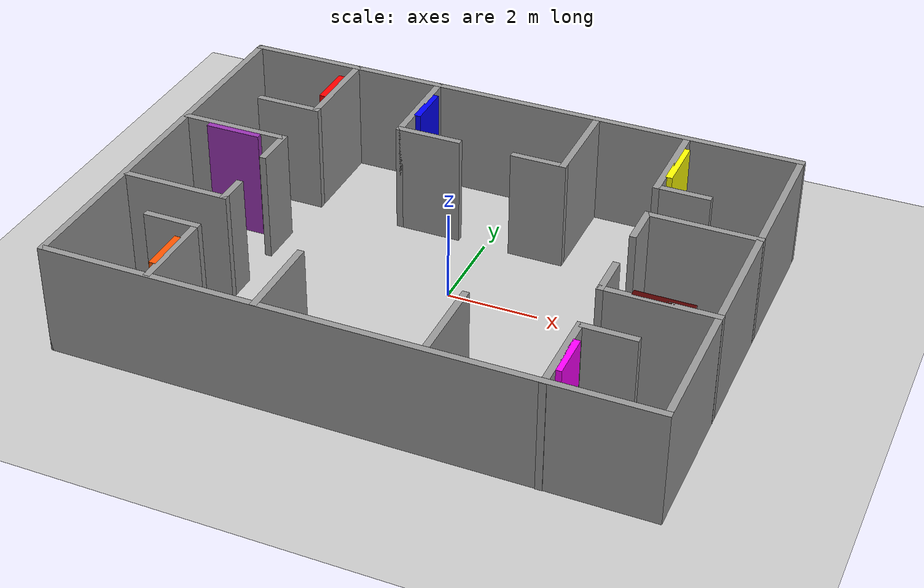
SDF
<sdf version="1.6">
 <world name="default">
  <light name="sun" type="directional">
   <pose>0 0 10 0 -0 0</pose>
   <diffuse>0.8 0.8 0.8 1</diffuse>
   <specular>0.2 0.2 0.2 1</specular>
   <attenuation>
    <range>1000</range>
    <constant>0.9</constant>
    <linear>0.01</linear>
    <quadratic>0.001</quadratic>
   </attenuation>
   <direction>-0.5 0.1 -0.9</direction>
  </light>
  <model name="ground_plane">
   <static>1</static>
   <link name="link">
    <collision name="collision">
     <geometry><plane><normal>0 0 1</normal><size>100 100</size></plane></geometry>
     <surface><friction><ode><mu>100</mu><mu2>50</mu2></ode></friction></surface>
    </collision>
    <visual name="visual">
     <cast_shadows>0</cast_shadows>
     <geometry><plane><normal>0 0 1</normal><size>100 100</size></plane></geometry>
     <material>
      <script><uri>file://media/materials/scripts/gazebo.material</uri><name>Gazebo/Grey</name></script>
     </material>
    </visual>
   </link>
  </model>
  <gravity>0 0 -9.8</gravity>
  <magnetic_field>6e-06 2.3e-05 -4.2e-05</magnetic_field>
  <atmosphere type="adiabatic"/>
  <physics name="default_physics" default="0" type="ode">
   <max_step_size>0.001</max_step_size>
   <real_time_factor>1</real_time_factor>
   <real_time_update_rate>1000</real_time_update_rate>
  </physics>
  <scene><ambient>0.4 0.4 0.4 1</ambient><background>0.7 0.7 0.7 1</background><shadows>1</shadows></scene>
  <spherical_coordinates>
   <surface_model>EARTH_WGS84</surface_model>
   <latitude_deg>0</latitude_deg>
   <longitude_deg>0</longitude_deg>
   <elevation>0</elevation>
   <heading_deg>0</heading_deg>
  </spherical_coordinates>
  <model name="world2">
   <pose>-0.14773 -0.383057 0 0 -0 0</pose>
   <link name="Wall_100">
    <collision name="Wall_100_Collision">
     <geometry><box><size>1.25 0.15 2.5</size></box></geometry>
     <pose>0 0 1.25 0 -0 0</pose>
    </collision>
    <visual name="Wall_100_Visual">
     <pose>0 0 1.25 0 -0 0</pose>
     <geometry><box><size>1.25 0.15 2.5</size></box></geometry>
     <material>
      <script><uri>file://media/materials/scripts/gazebo.material</uri><name>Gazebo/Grey</name></script>
      <ambient>1 1 1 1</ambient>
     </material>
     <meta><layer>0</layer></meta>
    </visual>
    <pose>1.33062 2.43561 0 0 -0 3.14159</pose>
   </link>
   <link name="Wall_104">
    <collision name="Wall_104_Collision">
     <geometry><box><size>1.25 0.15 2.5</size></box></geometry>
     <pose>0 0 1.25 0 -0 0</pose>
    </collision>
    <visual name="Wall_104_Visual">
     <pose>0 0 1.25 0 -0 0</pose>
     <geometry><box><size>1.25 0.15 2.5</size></box></geometry>
     <material>
      <script><uri>file://media/materials/scripts/gazebo.material</uri><name>Gazebo/Purple</name></script>
      <ambient>0 0 0 1</ambient>
     </material>
     <meta><layer>0</layer></meta>
    </visual>
    <pose>-5.17231 0.955395 0 0 -0 0</pose>
   </link>
   <link name="Wall_107">
    <collision name="Wall_107_Collision">
     <geometry><box><size>1 0.15 2.5</size></box></geometry>
     <pose>0 0 1.25 0 -0 0</pose>
    </collision>
    <visual name="Wall_107_Visual">
     <pose>0 0 1.25 0 -0 0</pose>
     <geometry><box><size>1 0.15 2.5</size></box></geometry>
     <material>
      <script><uri>file://media/materials/scripts/gazebo.material</uri><name>Gazebo/Grey</name></script>
      <ambient>1 0 0 1</ambient>
     </material>
     <meta><layer>0</layer></meta>
    </visual>
    <pose>-4.073 3.54743 0 0 0 -1.5708</pose>
   </link>
   <link name="Wall_109">
    <collision name="Wall_109_Collision">
     <geometry><box><size>1.25 0.15 2.5</size></box></geometry>
     <pose>0 0 1.25 0 -0 0</pose>
    </collision>
    <visual name="Wall_109_Visual">
     <pose>0 0 1.25 0 -0 0</pose>
     <geometry><box><size>1.25 0.15 2.5</size></box></geometry>
     <material>
      <script><uri>file://media/materials/scripts/gazebo.material</uri><name>Gazebo/Grey</name></script>
      <ambient>1 1 0 1</ambient>
     </material>
     <meta><layer>0</layer></meta>
    </visual>
    <pose>4.05288 3.48277 0 0 0 -1.5708</pose>
   </link>
   <link name="Wall_111">
    <collision name="Wall_111_Collision">
     <geometry><box><size>1 0.15 2.5</size></box></geometry>
     <pose>0 0 1.25 0 -0 0</pose>
    </collision>
    <visual name="Wall_111_Visual">
     <pose>0 0 1.25 0 -0 0</pose>
     <geometry><box><size>1 0.15 2.5</size></box></geometry>
     <material>
      <script><uri>file://media/materials/scripts/gazebo.material</uri><name>Gazebo/Grey</name></script>
      <ambient>1 0.333333 0 1</ambient>
     </material>
     <meta><layer>0</layer></meta>
    </visual>
    <pose>-4.17357 -3.65323 0 0 0 -1.5708</pose>
   </link>
   <link name="Wall_113">
    <collision name="Wall_113_Collision">
     <geometry><box><size>1.25 0.15 2.5</size></box></geometry>
     <pose>0 0 1.25 0 -0 0</pose>
    </collision>
    <visual name="Wall_113_Visual">
     <pose>0 0 1.25 0 -0 0</pose>
     <geometry><box><size>1.25 0.15 2.5</size></box></geometry>
     <material>
      <script><uri>file://media/materials/scripts/gazebo.material</uri><name>Gazebo/Grey</name></script>
      <ambient>0.333333 0 0 1</ambient>
     </material>
     <meta><layer>0</layer></meta>
    </visual>
    <pose>5.30686 -1.33755 0 0 -0 0</pose>
   </link>
   <link name="Wall_117">
    <collision name="Wall_117_Collision">
     <geometry><box><size>1 0.15 2.5</size></box></geometry>
     <pose>0 0 1.25 0 -0 0</pose>
    </collision>
    <visual name="Wall_117_Visual">
     <pose>0 0 1.25 0 -0 0</pose>
     <geometry><box><size>1 0.15 2.5</size></box></geometry>
     <material>
      <script><uri>file://media/materials/scripts/gazebo.material</uri><name>Gazebo/Grey</name></script>
      <ambient>1 0 1 1</ambient>
     </material>
     <meta><layer>0</layer></meta>
    </visual>
    <pose>4.23391 -3.67334 0 0 0 -1.5708</pose>
   </link>
   <link name="Wall_122">
    <collision name="Wall_122_Collision">
     <geometry><box><size>1 0.15 2.5</size></box></geometry>
     <pose>0 0 1.25 0 -0 0</pose>
    </collision>
    <visual name="Wall_122_Visual">
     <pose>0 0 1.25 0 -0 0</pose>
     <geometry><box><size>1 0.15 2.5</size></box></geometry>
     <material>
      <script><uri>file://media/materials/scripts/gazebo.material</uri><name>Gazebo/Grey</name></script>
      <ambient>0 0 1 1</ambient>
     </material>
     <meta><layer>0</layer></meta>
    </visual>
    <pose>-1.78005 3.58766 0 0 0 -1.5708</pose>
   </link>
   <link name="Wall_42">
    <collision name="Wall_42_Collision">
     <geometry><box><size>9.25 0.15 2.5</size></box></geometry>
     <pose>0 0 1.25 0 -0 0</pose>
    </collision>
    <visual name="Wall_42_Visual">
     <pose>0 0 1.25 0 -0 0</pose>
     <geometry><box><size>9.25 0.15 2.5</size></box></geometry>
     <material>
      <script><uri>file://media/materials/scripts/gazebo.material</uri><name>Gazebo/Grey</name></script>
      <ambient>1 1 1 1</ambient>
     </material>
     <meta><layer>0</layer></meta>
    </visual>
    <pose>-6.42629 0.005724 0 0 0 -1.5708</pose>
   </link>
   <link name="Wall_43">
    <collision name="Wall_43_Collision">
     <geometry><box><size>13 0.15 2.5</size></box></geometry>
     <pose>0 0 1.25 0 -0 0</pose>
    </collision>
    <visual name="Wall_43_Visual">
     <pose>0 0 1.25 0 -0 0</pose>
     <geometry><box><size>13 0.15 2.5</size></box></geometry>
     <material>
      <script><uri>file://media/materials/scripts/gazebo.material</uri><name>Gazebo/Grey</name></script>
      <ambient>1 1 1 1</ambient>
     </material>
     <meta><layer>0</layer></meta>
    </visual>
    <pose>-0.001286 -4.54428 0 0 -0 0</pose>
   </link>
   <link name="Wall_44">
    <collision name="Wall_44_Collision">
     <geometry><box><size>9.25 0.15 2.5</size></box></geometry>
     <pose>0 0 1.25 0 -0 0</pose>
    </collision>
    <visual name="Wall_44_Visual">
     <pose>0 0 1.25 0 -0 0</pose>
     <geometry><box><size>9.25 0.15 2.5</size></box></geometry>
     <material>
      <script><uri>file://media/materials/scripts/gazebo.material</uri><name>Gazebo/Grey</name></script>
      <ambient>1 1 1 1</ambient>
     </material>
     <meta><layer>0</layer></meta>
    </visual>
    <pose>6.42371 0.005724 0 0 -0 1.5708</pose>
   </link>
   <link name="Wall_45">
    <collision name="Wall_45_Collision">
     <geometry><box><size>13 0.15 2.5</size></box></geometry>
     <pose>0 0 1.25 0 -0 0</pose>
    </collision>
    <visual name="Wall_45_Visual">
     <pose>0 0 1.25 0 -0 0</pose>
     <geometry><box><size>13 0.15 2.5</size></box></geometry>
     <material>
      <script><uri>file://media/materials/scripts/gazebo.material</uri><name>Gazebo/Grey</name></script>
      <ambient>1 1 1 1</ambient>
     </material>
     <meta><layer>0</layer></meta>
    </visual>
    <pose>-0.001286 4.55572 0 0 -0 3.14159</pose>
   </link>
   <link name="Wall_47">
    <collision name="Wall_47_Collision">
     <geometry><box><size>2.25 0.15 2.5</size></box></geometry>
     <pose>0 0 1.25 0 -0 0</pose>
    </collision>
    <visual name="Wall_47_Visual">
     <pose>0 0 1.25 0 -0 0</pose>
     <geometry><box><size>2.25 0.15 2.5</size></box></geometry>
     <material>
      <script><uri>file://media/materials/scripts/gazebo.material</uri><name>Gazebo/Grey</name></script>
      <ambient>1 1 1 1</ambient>
     </material>
     <meta><layer>0</layer></meta>
    </visual>
    <pose>-3.9322 3.50572 0 0 0 -1.5708</pose>
   </link>
   <link name="Wall_48">
    <collision name="Wall_48_Collision">
     <geometry><box><size>1.5 0.15 2.5</size></box></geometry>
     <pose>0 0 1.25 0 -0 0</pose>
    </collision>
    <visual name="Wall_48_Visual">
     <pose>0 0 1.25 0 -0 0</pose>
     <geometry><box><size>1.5 0.15 2.5</size></box></geometry>
     <material>
      <script><uri>file://media/materials/scripts/gazebo.material</uri><name>Gazebo/Grey</name></script>
      <ambient>1 1 1 1</ambient>
     </material>
     <meta><layer>0</layer></meta>
    </visual>
    <pose>-4.6072 2.45572 0 0 -0 3.14159</pose>
   </link>
   <link name="Wall_50">
    <collision name="Wall_50_Collision">
     <geometry><box><size>2.5 0.15 2.5</size></box></geometry>
     <pose>0 0 1.25 0 -0 0</pose>
    </collision>
    <visual name="Wall_50_Visual">
     <pose>0 0 1.25 0 -0 0</pose>
     <geometry><box><size>2.5 0.15 2.5</size></box></geometry>
     <material>
      <script><uri>file://media/materials/scripts/gazebo.material</uri><name>Gazebo/Grey</name></script>
      <ambient>1 1 1 1</ambient>
     </material>
     <meta><layer>0</layer></meta>
    </visual>
    <pose>-5.23117 1.09619 0 0 -0 0</pose>
   </link>
   <link name="Wall_59">
    <collision name="Wall_59_Collision">
     <geometry><box><size>1 0.15 2.5</size></box></geometry>
     <pose>0 0 1.25 0 -0 0</pose>
    </collision>
    <visual name="Wall_59_Visual">
     <pose>0 0 1.25 0 -0 0</pose>
     <geometry><box><size>1 0.15 2.5</size></box></geometry>
     <material>
      <script><uri>file://media/materials/scripts/gazebo.material</uri><name>Gazebo/Grey</name></script>
      <ambient>1 1 1 1</ambient>
     </material>
     <meta><layer>0</layer></meta>
    </visual>
    <pose>-4.05617 0.671189 0 0 0 -1.5708</pose>
   </link>
   <link name="Wall_61">
    <collision name="Wall_61_Collision">
     <geometry><box><size>0.75 0.15 2.5</size></box></geometry>
     <pose>0 0 1.25 0 -0 0</pose>
    </collision>
    <visual name="Wall_61_Visual">
     <pose>0 0 1.25 0 -0 0</pose>
     <geometry><box><size>0.75 0.15 2.5</size></box></geometry>
     <material>
      <script><uri>file://media/materials/scripts/gazebo.material</uri><name>Gazebo/Grey</name></script>
      <ambient>1 1 1 1</ambient>
     </material>
     <meta><layer>0</layer></meta>
    </visual>
    <pose>-4.05288 -1.19505 0 0 0 -1.5708</pose>
   </link>
   <link name="Wall_62">
    <collision name="Wall_62_Collision">
     <geometry><box><size>2.5 0.15 2.5</size></box></geometry>
     <pose>0 0 1.25 0 -0 0</pose>
    </collision>
    <visual name="Wall_62_Visual">
     <pose>0 0 1.25 0 -0 0</pose>
     <geometry><box><size>2.5 0.15 2.5</size></box></geometry>
     <material>
      <script><uri>file://media/materials/scripts/gazebo.material</uri><name>Gazebo/Grey</name></script>
      <ambient>1 1 1 1</ambient>
     </material>
     <meta><layer>0</layer></meta>
    </visual>
    <pose>-5.22788 -1.49505 0 0 -0 3.14159</pose>
   </link>
   <link name="Wall_65">
    <collision name="Wall_65_Collision">
     <geometry><box><size>2 0.15 2.5</size></box></geometry>
     <pose>0 0 1.25 0 -0 0</pose>
    </collision>
    <visual name="Wall_65_Visual">
     <pose>0 0 1.25 0 -0 0</pose>
     <geometry><box><size>2 0.15 2.5</size></box></geometry>
     <material>
      <script><uri>file://media/materials/scripts/gazebo.material</uri><name>Gazebo/Grey</name></script>
      <ambient>1 1 1 1</ambient>
     </material>
     <meta><layer>0</layer></meta>
    </visual>
    <pose>-4.05288 -3.57038 0 0 -0 1.5708</pose>
   </link>
   <link name="Wall_66">
    <collision name="Wall_66_Collision">
     <geometry><box><size>1.25 0.15 2.5</size></box></geometry>
     <pose>0 0 1.25 0 -0 0</pose>
    </collision>
    <visual name="Wall_66_Visual">
     <pose>0 0 1.25 0 -0 0</pose>
     <geometry><box><size>1.25 0.15 2.5</size></box></geometry>
     <material>
      <script><uri>file://media/materials/scripts/gazebo.material</uri><name>Gazebo/Grey</name></script>
      <ambient>1 1 1 1</ambient>
     </material>
     <meta><layer>0</layer></meta>
    </visual>
    <pose>-4.60288 -2.64538 0 0 -0 3.14159</pose>
   </link>
   <link name="Wall_69">
    <collision name="Wall_69_Collision">
     <geometry><box><size>2.25 0.15 2.5</size></box></geometry>
     <pose>0 0 1.25 0 -0 0</pose>
    </collision>
    <visual name="Wall_69_Visual">
     <pose>0 0 1.25 0 -0 0</pose>
     <geometry><box><size>2.25 0.15 2.5</size></box></geometry>
     <material>
      <script><uri>file://media/materials/scripts/gazebo.material</uri><name>Gazebo/Grey</name></script>
      <ambient>1 1 1 1</ambient>
     </material>
     <meta><layer>0</layer></meta>
    </visual>
    <pose>3.9322 3.48561 0 0 0 -1.5708</pose>
   </link>
   <link name="Wall_70">
    <collision name="Wall_70_Collision">
     <geometry><box><size>1.25 0.15 2.5</size></box></geometry>
     <pose>0 0 1.25 0 -0 0</pose>
    </collision>
    <visual name="Wall_70_Visual">
     <pose>0 0 1.25 0 -0 0</pose>
     <geometry><box><size>1.25 0.15 2.5</size></box></geometry>
     <material>
      <script><uri>file://media/materials/scripts/gazebo.material</uri><name>Gazebo/Grey</name></script>
      <ambient>1 1 1 1</ambient>
     </material>
     <meta><layer>0</layer></meta>
    </visual>
    <pose>4.4822 2.43561 0 0 -0 0</pose>
   </link>
   <link name="Wall_81">
    <collision name="Wall_81_Collision">
     <geometry><box><size>2.5 0.15 2.5</size></box></geometry>
     <pose>0 0 1.25 0 -0 0</pose>
    </collision>
    <visual name="Wall_81_Visual">
     <pose>0 0 1.25 0 -0 0</pose>
     <geometry><box><size>2.5 0.15 2.5</size></box></geometry>
     <material>
      <script><uri>file://media/materials/scripts/gazebo.material</uri><name>Gazebo/Grey</name></script>
      <ambient>1 1 1 1</ambient>
     </material>
     <meta><layer>0</layer></meta>
    </visual>
    <pose>5.25129 1.37778 0 0 -0 3.14159</pose>
   </link>
   <link name="Wall_82">
    <collision name="Wall_82_Collision">
     <geometry><box><size>1 0.15 2.5</size></box></geometry>
     <pose>0 0 1.25 0 -0 0</pose>
    </collision>
    <visual name="Wall_82_Visual">
     <pose>0 0 1.25 0 -0 0</pose>
     <geometry><box><size>1 0.15 2.5</size></box></geometry>
     <material>
      <script><uri>file://media/materials/scripts/gazebo.material</uri><name>Gazebo/Grey</name></script>
      <ambient>1 1 1 1</ambient>
     </material>
     <meta><layer>0</layer></meta>
    </visual>
    <pose>4.07629 0.95278 0 0 0 -1.5708</pose>
   </link>
   <link name="Wall_84">
    <collision name="Wall_84_Collision">
     <geometry><box><size>2.5 0.15 2.5</size></box></geometry>
     <pose>0 0 1.25 0 -0 0</pose>
    </collision>
    <visual name="Wall_84_Visual">
     <pose>0 0 1.25 0 -0 0</pose>
     <geometry><box><size>2.5 0.15 2.5</size></box></geometry>
     <material>
      <script><uri>file://media/materials/scripts/gazebo.material</uri><name>Gazebo/Grey</name></script>
      <ambient>1 1 1 1</ambient>
     </material>
     <meta><layer>0</layer></meta>
    </visual>
    <pose>5.25129 -1.43812 0 0 -0 3.14159</pose>
   </link>
   <link name="Wall_85">
    <collision name="Wall_85_Collision">
     <geometry><box><size>1 0.15 2.5</size></box></geometry>
     <pose>0 0 1.25 0 -0 0</pose>
    </collision>
    <visual name="Wall_85_Visual">
     <pose>0 0 1.25 0 -0 0</pose>
     <geometry><box><size>1 0.15 2.5</size></box></geometry>
     <material>
      <script><uri>file://media/materials/scripts/gazebo.material</uri><name>Gazebo/Grey</name></script>
      <ambient>1 1 1 1</ambient>
     </material>
     <meta><layer>0</layer></meta>
    </visual>
    <pose>4.07629 -1.01312 0 0 -0 1.5708</pose>
   </link>
   <link name="Wall_87">
    <collision name="Wall_87_Collision">
     <geometry><box><size>2 0.15 2.5</size></box></geometry>
     <pose>0 0 1.25 0 -0 0</pose>
    </collision>
    <visual name="Wall_87_Visual">
     <pose>0 0 1.25 0 -0 0</pose>
     <geometry><box><size>2 0.15 2.5</size></box></geometry>
     <material>
      <script><uri>file://media/materials/scripts/gazebo.material</uri><name>Gazebo/Grey</name></script>
      <ambient>1 1 1 1</ambient>
     </material>
     <meta><layer>0</layer></meta>
    </visual>
    <pose>4.11323 -3.63072 0 0 -0 1.5708</pose>
   </link>
   <link name="Wall_88">
    <collision name="Wall_88_Collision">
     <geometry><box><size>1.25 0.15 2.5</size></box></geometry>
     <pose>0 0 1.25 0 -0 0</pose>
    </collision>
    <visual name="Wall_88_Visual">
     <pose>0 0 1.25 0 -0 0</pose>
     <geometry><box><size>1.25 0.15 2.5</size></box></geometry>
     <material>
      <script><uri>file://media/materials/scripts/gazebo.material</uri><name>Gazebo/Grey</name></script>
      <ambient>1 1 1 1</ambient>
     </material>
     <meta><layer>0</layer></meta>
    </visual>
    <pose>4.66323 -2.70572 0 0 -0 0</pose>
   </link>
   <link name="Wall_90">
    <collision name="Wall_90_Collision">
     <geometry><box><size>2 0.15 2.5</size></box></geometry>
     <pose>0 0 1.25 0 -0 0</pose>
    </collision>
    <visual name="Wall_90_Visual">
     <pose>0 0 1.25 0 -0 0</pose>
     <geometry><box><size>2 0.15 2.5</size></box></geometry>
     <material>
      <script><uri>file://media/materials/scripts/gazebo.material</uri><name>Gazebo/Grey</name></script>
      <ambient>1 1 1 1</ambient>
     </material>
     <meta><layer>0</layer></meta>
    </visual>
    <pose>-1.71971 -3.61061 0 0 -0 1.5708</pose>
   </link>
   <link name="Wall_93">
    <collision name="Wall_93_Collision">
     <geometry><box><size>2 0.15 2.5</size></box></geometry>
     <pose>0 0 1.25 0 -0 0</pose>
    </collision>
    <visual name="Wall_93_Visual">
     <pose>0 0 1.25 0 -0 0</pose>
     <geometry><box><size>2 0.15 2.5</size></box></geometry>
     <material>
      <script><uri>file://media/materials/scripts/gazebo.material</uri><name>Gazebo/Grey</name></script>
      <ambient>1 1 1 1</ambient>
     </material>
     <meta><layer>0</layer></meta>
    </visual>
    <pose>1.78005 -3.5905 0 0 -0 1.5708</pose>
   </link>
   <link name="Wall_96">
    <collision name="Wall_96_Collision">
     <geometry><box><size>2.25 0.15 2.5</size></box></geometry>
     <pose>0 0 1.25 0 -0 0</pose>
    </collision>
    <visual name="Wall_96_Visual">
     <pose>0 0 1.25 0 -0 0</pose>
     <geometry><box><size>2.25 0.15 2.5</size></box></geometry>
     <material>
      <script><uri>file://media/materials/scripts/gazebo.material</uri><name>Gazebo/Grey</name></script>
      <ambient>1 1 1 1</ambient>
     </material>
     <meta><layer>0</layer></meta>
    </visual>
    <pose>-1.90073 3.50572 0 0 0 -1.5708</pose>
   </link>
   <link name="Wall_97">
    <collision name="Wall_97_Collision">
     <geometry><box><size>1.5 0.15 2.5</size></box></geometry>
     <pose>0 0 1.25 0 -0 0</pose>
    </collision>
    <visual name="Wall_97_Visual">
     <pose>0 0 1.25 0 -0 0</pose>
     <geometry><box><size>1.5 0.15 2.5</size></box></geometry>
     <material>
      <script><uri>file://media/materials/scripts/gazebo.material</uri><name>Gazebo/Grey</name></script>
      <ambient>1 1 1 1</ambient>
     </material>
     <meta><layer>0</layer></meta>
    </visual>
    <pose>-1.22573 2.45572 0 0 -0 0</pose>
   </link>
   <link name="Wall_99">
    <collision name="Wall_99_Collision">
     <geometry><box><size>2.25 0.15 2.5</size></box></geometry>
     <pose>0 0 1.25 0 -0 0</pose>
    </collision>
    <visual name="Wall_99_Visual">
     <pose>0 0 1.25 0 -0 0</pose>
     <geometry><box><size>2.25 0.15 2.5</size></box></geometry>
     <material>
      <script><uri>file://media/materials/scripts/gazebo.material</uri><name>Gazebo/Grey</name></script>
      <ambient>1 1 1 1</ambient>
     </material>
     <meta><layer>0</layer></meta>
    </visual>
    <pose>1.88062 3.48561 0 0 0 -1.5708</pose>
   </link>
   <static>1</static>
  </model>
 </world>
</sdf>
